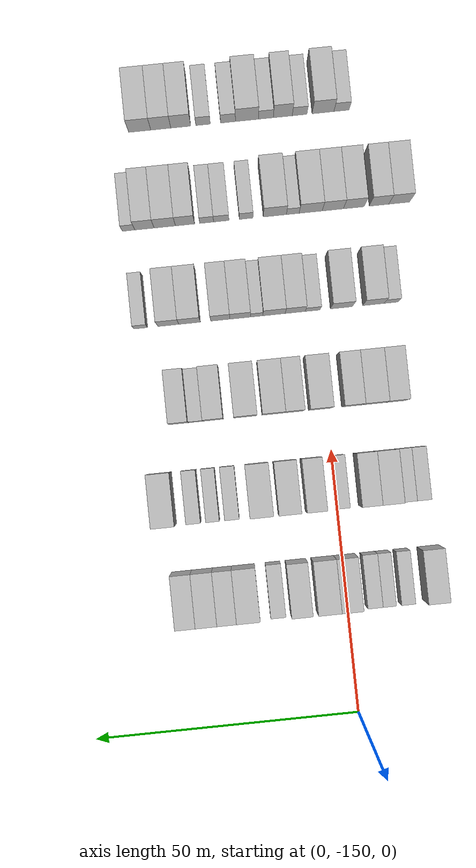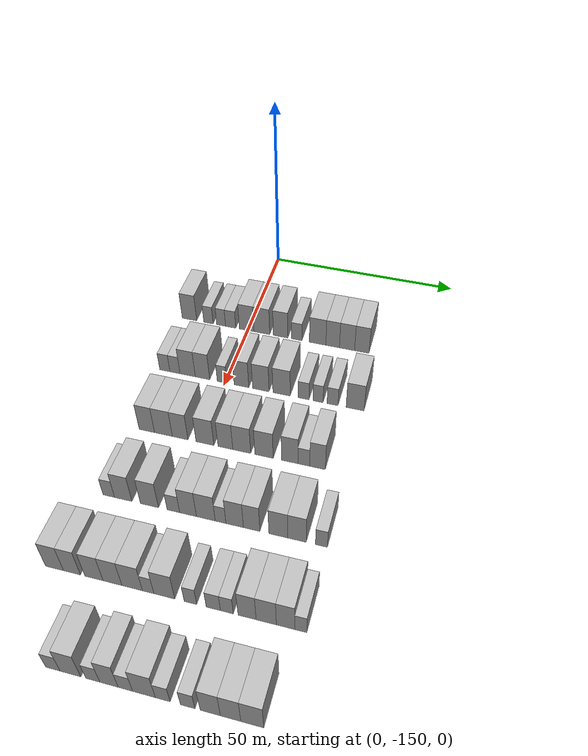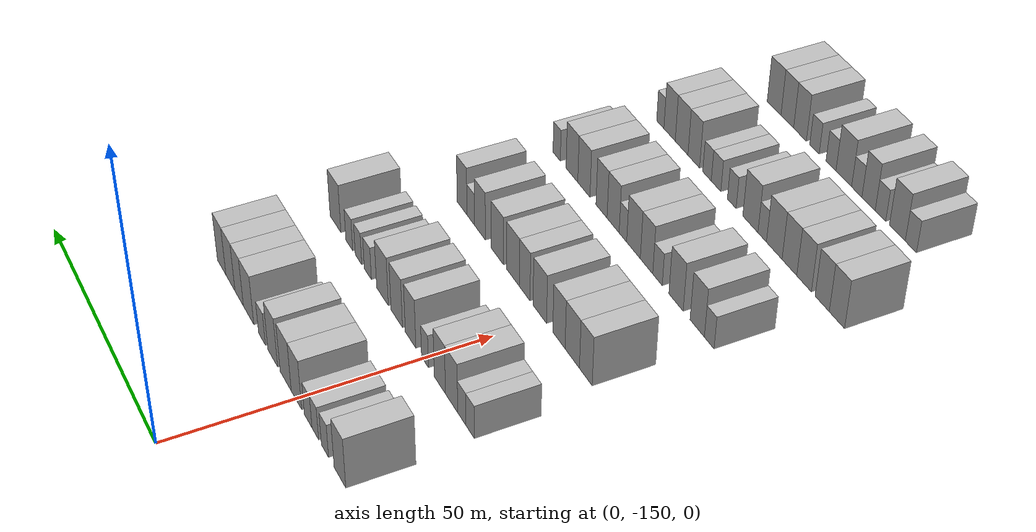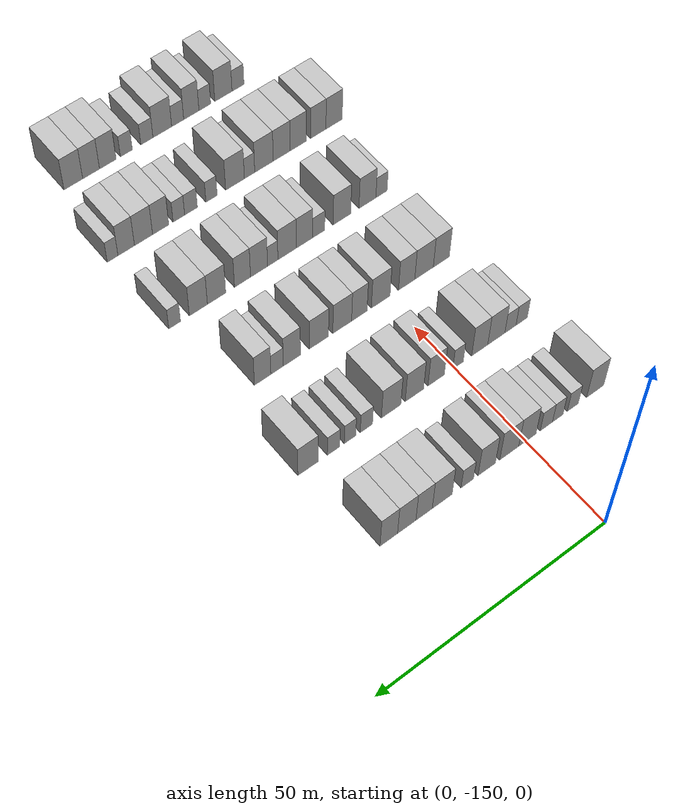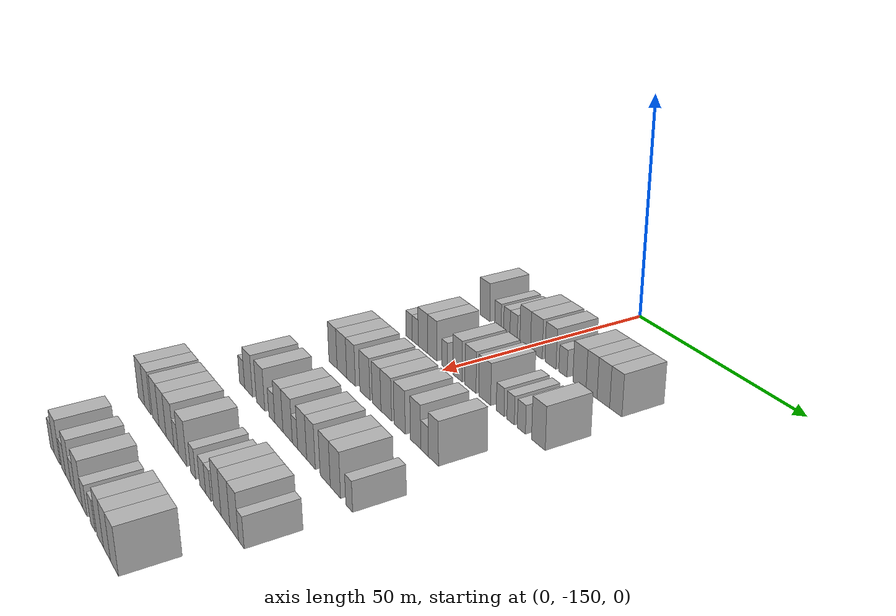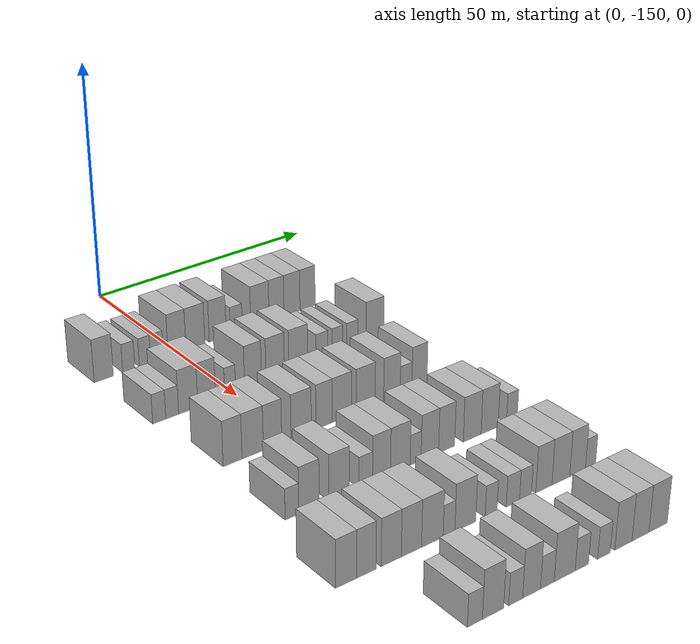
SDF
<sdf version="1.6">
 <world name="default">
  <model name="building_50">
   <static>1</static>
   <pose>25.0000 -166.3550 0 0.000000 0.000000 0.000000</pose>
   <link name="link">
    <pose>0 0 4.50 0 0 0</pose>
    <collision name="collision"><geometry><box><size>10.0000 4.1114 9.0000</size></box></geometry></collision>
    <visual name="visual">
     <cast_shadows>0</cast_shadows>
     <geometry><box><size>10.0000 4.1114 9.0000</size></box></geometry>
     <material>
      <script>
       <uri>model://HANNAS_wall/materials/scripts</uri>
       <uri>model://HANNAS_wall/materials/textures</uri>
       <name>vrc/HANNAS_wall</name>
      </script>
     </material>
    </visual>
   </link>
  </model>
  <model name="building_51">
   <static>1</static>
   <pose>25.0000 -160.9869 0 0.000000 0.000000 0.000000</pose>
   <link name="link">
    <pose>0 0 3.00 0 0 0</pose>
    <collision name="collision"><geometry><box><size>10.0000 2.6247 6.0000</size></box></geometry></collision>
    <visual name="visual">
     <cast_shadows>0</cast_shadows>
     <geometry><box><size>10.0000 2.6247 6.0000</size></box></geometry>
     <material>
      <script>
       <uri>model://HANNAS_wall/materials/scripts</uri>
       <uri>model://HANNAS_wall/materials/textures</uri>
       <name>vrc/HANNAS_wall</name>
      </script>
     </material>
    </visual>
   </link>
  </model>
  <model name="building_52">
   <static>1</static>
   <pose>25.0000 -157.4329 0 0.000000 0.000000 0.000000</pose>
   <link name="link">
    <pose>0 0 3.00 0 0 0</pose>
    <collision name="collision"><geometry><box><size>10.0000 2.4834 6.0000</size></box></geometry></collision>
    <visual name="visual">
     <cast_shadows>0</cast_shadows>
     <geometry><box><size>10.0000 2.4834 6.0000</size></box></geometry>
     <material>
      <script>
       <uri>model://HANNAS_wall/materials/scripts</uri>
       <uri>model://HANNAS_wall/materials/textures</uri>
       <name>vrc/HANNAS_wall</name>
      </script>
     </material>
    </visual>
   </link>
  </model>
  <model name="building_53">
   <static>1</static>
   <pose>25.0000 -154.7656 0 0.000000 0.000000 0.000000</pose>
   <link name="link">
    <pose>0 0 3.00 0 0 0</pose>
    <collision name="collision"><geometry><box><size>10.0000 2.8512 6.0000</size></box></geometry></collision>
    <visual name="visual">
     <cast_shadows>0</cast_shadows>
     <geometry><box><size>10.0000 2.8512 6.0000</size></box></geometry>
     <material>
      <script>
       <uri>model://HANNAS_wall/materials/scripts</uri>
       <uri>model://HANNAS_wall/materials/textures</uri>
       <name>vrc/HANNAS_wall</name>
      </script>
     </material>
    </visual>
   </link>
  </model>
  <model name="building_54">
   <static>1</static>
   <pose>25.0000 -150.3234 0 0.000000 0.000000 0.000000</pose>
   <link name="link">
    <pose>0 0 4.50 0 0 0</pose>
    <collision name="collision"><geometry><box><size>10.0000 4.0333 9.0000</size></box></geometry></collision>
    <visual name="visual">
     <cast_shadows>0</cast_shadows>
     <geometry><box><size>10.0000 4.0333 9.0000</size></box></geometry>
     <material>
      <script>
       <uri>model://HANNAS_wall/materials/scripts</uri>
       <uri>model://HANNAS_wall/materials/textures</uri>
       <name>vrc/HANNAS_wall</name>
      </script>
     </material>
    </visual>
   </link>
  </model>
  <model name="building_55">
   <static>1</static>
   <pose>25.0000 -146.1334 0 0.000000 0.000000 0.000000</pose>
   <link name="link">
    <pose>0 0 4.50 0 0 0</pose>
    <collision name="collision"><geometry><box><size>10.0000 4.3468 9.0000</size></box></geometry></collision>
    <visual name="visual">
     <cast_shadows>0</cast_shadows>
     <geometry><box><size>10.0000 4.3468 9.0000</size></box></geometry>
     <material>
      <script>
       <uri>model://HANNAS_wall/materials/scripts</uri>
       <uri>model://HANNAS_wall/materials/textures</uri>
       <name>vrc/HANNAS_wall</name>
      </script>
     </material>
    </visual>
   </link>
  </model>
  <model name="building_56">
   <static>1</static>
   <pose>25.0000 -140.9835 0 0.000000 0.000000 0.000000</pose>
   <link name="link">
    <pose>0 0 4.50 0 0 0</pose>
    <collision name="collision"><geometry><box><size>10.0000 3.9530 9.0000</size></box></geometry></collision>
    <visual name="visual">
     <cast_shadows>0</cast_shadows>
     <geometry><box><size>10.0000 3.9530 9.0000</size></box></geometry>
     <material>
      <script>
       <uri>model://HANNAS_wall/materials/scripts</uri>
       <uri>model://HANNAS_wall/materials/textures</uri>
       <name>vrc/HANNAS_wall</name>
      </script>
     </material>
    </visual>
   </link>
  </model>
  <model name="building_57">
   <static>1</static>
   <pose>25.0000 -136.5951 0 0.000000 0.000000 0.000000</pose>
   <link name="link">
    <pose>0 0 3.00 0 0 0</pose>
    <collision name="collision"><geometry><box><size>10.0000 2.8238 6.0000</size></box></geometry></collision>
    <visual name="visual">
     <cast_shadows>0</cast_shadows>
     <geometry><box><size>10.0000 2.8238 6.0000</size></box></geometry>
     <material>
      <script>
       <uri>model://HANNAS_wall/materials/scripts</uri>
       <uri>model://HANNAS_wall/materials/textures</uri>
       <name>vrc/HANNAS_wall</name>
      </script>
     </material>
    </visual>
   </link>
  </model>
  <model name="building_58">
   <static>1</static>
   <pose>25.0000 -130.9755 0 0.000000 0.000000 0.000000</pose>
   <link name="link">
    <pose>0 0 4.50 0 0 0</pose>
    <collision name="collision"><geometry><box><size>10.0000 4.4152 9.0000</size></box></geometry></collision>
    <visual name="visual">
     <cast_shadows>0</cast_shadows>
     <geometry><box><size>10.0000 4.4152 9.0000</size></box></geometry>
     <material>
      <script>
       <uri>model://HANNAS_wall/materials/scripts</uri>
       <uri>model://HANNAS_wall/materials/textures</uri>
       <name>vrc/HANNAS_wall</name>
      </script>
     </material>
    </visual>
   </link>
  </model>
  <model name="building_59">
   <static>1</static>
   <pose>25.0000 -126.9599 0 0.000000 0.000000 0.000000</pose>
   <link name="link">
    <pose>0 0 4.50 0 0 0</pose>
    <collision name="collision"><geometry><box><size>10.0000 3.6161 9.0000</size></box></geometry></collision>
    <visual name="visual">
     <cast_shadows>0</cast_shadows>
     <geometry><box><size>10.0000 3.6161 9.0000</size></box></geometry>
     <material>
      <script>
       <uri>model://HANNAS_wall/materials/scripts</uri>
       <uri>model://HANNAS_wall/materials/textures</uri>
       <name>vrc/HANNAS_wall</name>
      </script>
     </material>
    </visual>
   </link>
  </model>
  <model name="building_60">
   <static>1</static>
   <pose>25.0000 -123.1505 0 0.000000 0.000000 0.000000</pose>
   <link name="link">
    <pose>0 0 4.50 0 0 0</pose>
    <collision name="collision"><geometry><box><size>10.0000 4.0026 9.0000</size></box></geometry></collision>
    <visual name="visual">
     <cast_shadows>0</cast_shadows>
     <geometry><box><size>10.0000 4.0026 9.0000</size></box></geometry>
     <material>
      <script>
       <uri>model://HANNAS_wall/materials/scripts</uri>
       <uri>model://HANNAS_wall/materials/textures</uri>
       <name>vrc/HANNAS_wall</name>
      </script>
     </material>
    </visual>
   </link>
  </model>
  <model name="building_61">
   <static>1</static>
   <pose>25.0000 -119.2473 0 0.000000 0.000000 0.000000</pose>
   <link name="link">
    <pose>0 0 4.50 0 0 0</pose>
    <collision name="collision"><geometry><box><size>10.0000 3.8039 9.0000</size></box></geometry></collision>
    <visual name="visual">
     <cast_shadows>0</cast_shadows>
     <geometry><box><size>10.0000 3.8039 9.0000</size></box></geometry>
     <material>
      <script>
       <uri>model://HANNAS_wall/materials/scripts</uri>
       <uri>model://HANNAS_wall/materials/textures</uri>
       <name>vrc/HANNAS_wall</name>
      </script>
     </material>
    </visual>
   </link>
  </model>
  <model name="building_223">
   <static>1</static>
   <pose>44.0000 -166.0020 0 0.000000 0.000000 0.000000</pose>
   <link name="link">
    <pose>0 0 3.00 0 0 0</pose>
    <collision name="collision"><geometry><box><size>10.0000 2.7193 6.0000</size></box></geometry></collision>
    <visual name="visual">
     <cast_shadows>0</cast_shadows>
     <geometry><box><size>10.0000 2.7193 6.0000</size></box></geometry>
     <material>
      <script>
       <uri>model://HANNAS_wall/materials/scripts</uri>
       <uri>model://HANNAS_wall/materials/textures</uri>
       <name>vrc/HANNAS_wall</name>
      </script>
     </material>
    </visual>
   </link>
  </model>
  <model name="building_224">
   <static>1</static>
   <pose>44.0000 -163.3001 0 0.000000 0.000000 0.000000</pose>
   <link name="link">
    <pose>0 0 3.00 0 0 0</pose>
    <collision name="collision"><geometry><box><size>10.0000 2.6847 6.0000</size></box></geometry></collision>
    <visual name="visual">
     <cast_shadows>0</cast_shadows>
     <geometry><box><size>10.0000 2.6847 6.0000</size></box></geometry>
     <material>
      <script>
       <uri>model://HANNAS_wall/materials/scripts</uri>
       <uri>model://HANNAS_wall/materials/textures</uri>
       <name>vrc/HANNAS_wall</name>
      </script>
     </material>
    </visual>
   </link>
  </model>
  <model name="building_225">
   <static>1</static>
   <pose>44.0000 -159.9141 0 0.000000 0.000000 0.000000</pose>
   <link name="link">
    <pose>0 0 4.50 0 0 0</pose>
    <collision name="collision"><geometry><box><size>10.0000 4.0872 9.0000</size></box></geometry></collision>
    <visual name="visual">
     <cast_shadows>0</cast_shadows>
     <geometry><box><size>10.0000 4.0872 9.0000</size></box></geometry>
     <material>
      <script>
       <uri>model://HANNAS_wall/materials/scripts</uri>
       <uri>model://HANNAS_wall/materials/textures</uri>
       <name>vrc/HANNAS_wall</name>
      </script>
     </material>
    </visual>
   </link>
  </model>
  <model name="building_226">
   <static>1</static>
   <pose>44.0000 -155.9651 0 0.000000 0.000000 0.000000</pose>
   <link name="link">
    <pose>0 0 4.50 0 0 0</pose>
    <collision name="collision"><geometry><box><size>10.0000 3.8107 9.0000</size></box></geometry></collision>
    <visual name="visual">
     <cast_shadows>0</cast_shadows>
     <geometry><box><size>10.0000 3.8107 9.0000</size></box></geometry>
     <material>
      <script>
       <uri>model://HANNAS_wall/materials/scripts</uri>
       <uri>model://HANNAS_wall/materials/textures</uri>
       <name>vrc/HANNAS_wall</name>
      </script>
     </material>
    </visual>
   </link>
  </model>
  <model name="building_227">
   <static>1</static>
   <pose>44.0000 -150.8498 0 0.000000 0.000000 0.000000</pose>
   <link name="link">
    <pose>0 0 3.00 0 0 0</pose>
    <collision name="collision"><geometry><box><size>10.0000 2.4200 6.0000</size></box></geometry></collision>
    <visual name="visual">
     <cast_shadows>0</cast_shadows>
     <geometry><box><size>10.0000 2.4200 6.0000</size></box></geometry>
     <material>
      <script>
       <uri>model://HANNAS_wall/materials/scripts</uri>
       <uri>model://HANNAS_wall/materials/textures</uri>
       <name>vrc/HANNAS_wall</name>
      </script>
     </material>
    </visual>
   </link>
  </model>
  <model name="building_228">
   <static>1</static>
   <pose>44.0000 -145.7404 0 0.000000 0.000000 0.000000</pose>
   <link name="link">
    <pose>0 0 4.50 0 0 0</pose>
    <collision name="collision"><geometry><box><size>10.0000 3.7988 9.0000</size></box></geometry></collision>
    <visual name="visual">
     <cast_shadows>0</cast_shadows>
     <geometry><box><size>10.0000 3.7988 9.0000</size></box></geometry>
     <material>
      <script>
       <uri>model://HANNAS_wall/materials/scripts</uri>
       <uri>model://HANNAS_wall/materials/textures</uri>
       <name>vrc/HANNAS_wall</name>
      </script>
     </material>
    </visual>
   </link>
  </model>
  <model name="building_229">
   <static>1</static>
   <pose>44.0000 -140.7327 0 0.000000 0.000000 0.000000</pose>
   <link name="link">
    <pose>0 0 4.50 0 0 0</pose>
    <collision name="collision"><geometry><box><size>10.0000 4.2165 9.0000</size></box></geometry></collision>
    <visual name="visual">
     <cast_shadows>0</cast_shadows>
     <geometry><box><size>10.0000 4.2165 9.0000</size></box></geometry>
     <material>
      <script>
       <uri>model://HANNAS_wall/materials/scripts</uri>
       <uri>model://HANNAS_wall/materials/textures</uri>
       <name>vrc/HANNAS_wall</name>
      </script>
     </material>
    </visual>
   </link>
  </model>
  <model name="building_230">
   <static>1</static>
   <pose>44.0000 -135.4212 0 0.000000 0.000000 0.000000</pose>
   <link name="link">
    <pose>0 0 4.50 0 0 0</pose>
    <collision name="collision"><geometry><box><size>10.0000 4.4064 9.0000</size></box></geometry></collision>
    <visual name="visual">
     <cast_shadows>0</cast_shadows>
     <geometry><box><size>10.0000 4.4064 9.0000</size></box></geometry>
     <material>
      <script>
       <uri>model://HANNAS_wall/materials/scripts</uri>
       <uri>model://HANNAS_wall/materials/textures</uri>
       <name>vrc/HANNAS_wall</name>
      </script>
     </material>
    </visual>
   </link>
  </model>
  <model name="building_231">
   <static>1</static>
   <pose>44.0000 -129.8470 0 0.000000 0.000000 0.000000</pose>
   <link name="link">
    <pose>0 0 3.00 0 0 0</pose>
    <collision name="collision"><geometry><box><size>10.0000 2.7421 6.0000</size></box></geometry></collision>
    <visual name="visual">
     <cast_shadows>0</cast_shadows>
     <geometry><box><size>10.0000 2.7421 6.0000</size></box></geometry>
     <material>
      <script>
       <uri>model://HANNAS_wall/materials/scripts</uri>
       <uri>model://HANNAS_wall/materials/textures</uri>
       <name>vrc/HANNAS_wall</name>
      </script>
     </material>
    </visual>
   </link>
  </model>
  <model name="building_232">
   <static>1</static>
   <pose>44.0000 -126.2018 0 0.000000 0.000000 0.000000</pose>
   <link name="link">
    <pose>0 0 3.00 0 0 0</pose>
    <collision name="collision"><geometry><box><size>10.0000 2.5482 6.0000</size></box></geometry></collision>
    <visual name="visual">
     <cast_shadows>0</cast_shadows>
     <geometry><box><size>10.0000 2.5482 6.0000</size></box></geometry>
     <material>
      <script>
       <uri>model://HANNAS_wall/materials/scripts</uri>
       <uri>model://HANNAS_wall/materials/textures</uri>
       <name>vrc/HANNAS_wall</name>
      </script>
     </material>
    </visual>
   </link>
  </model>
  <model name="building_233">
   <static>1</static>
   <pose>44.0000 -122.5564 0 0.000000 0.000000 0.000000</pose>
   <link name="link">
    <pose>0 0 3.00 0 0 0</pose>
    <collision name="collision"><geometry><box><size>10.0000 2.7426 6.0000</size></box></geometry></collision>
    <visual name="visual">
     <cast_shadows>0</cast_shadows>
     <geometry><box><size>10.0000 2.7426 6.0000</size></box></geometry>
     <material>
      <script>
       <uri>model://HANNAS_wall/materials/scripts</uri>
       <uri>model://HANNAS_wall/materials/textures</uri>
       <name>vrc/HANNAS_wall</name>
      </script>
     </material>
    </visual>
   </link>
  </model>
  <model name="building_234">
   <static>1</static>
   <pose>44.0000 -116.9736 0 0.000000 0.000000 0.000000</pose>
   <link name="link">
    <pose>0 0 4.50 0 0 0</pose>
    <collision name="collision"><geometry><box><size>10.0000 4.4230 9.0000</size></box></geometry></collision>
    <visual name="visual">
     <cast_shadows>0</cast_shadows>
     <geometry><box><size>10.0000 4.4230 9.0000</size></box></geometry>
     <material>
      <script>
       <uri>model://HANNAS_wall/materials/scripts</uri>
       <uri>model://HANNAS_wall/materials/textures</uri>
       <name>vrc/HANNAS_wall</name>
      </script>
     </material>
    </visual>
   </link>
  </model>
  <model name="building_403">
   <static>1</static>
   <pose>63.0000 -163.1177 0 0.000000 0.000000 0.000000</pose>
   <link name="link">
    <pose>0 0 4.50 0 0 0</pose>
    <collision name="collision"><geometry><box><size>10.0000 3.8690 9.0000</size></box></geometry></collision>
    <visual name="visual">
     <cast_shadows>0</cast_shadows>
     <geometry><box><size>10.0000 3.8690 9.0000</size></box></geometry>
     <material>
      <script>
       <uri>model://HANNAS_wall/materials/scripts</uri>
       <uri>model://HANNAS_wall/materials/textures</uri>
       <name>vrc/HANNAS_wall</name>
      </script>
     </material>
    </visual>
   </link>
  </model>
  <model name="building_404">
   <static>1</static>
   <pose>63.0000 -158.9531 0 0.000000 0.000000 0.000000</pose>
   <link name="link">
    <pose>0 0 4.50 0 0 0</pose>
    <collision name="collision"><geometry><box><size>10.0000 4.4602 9.0000</size></box></geometry></collision>
    <visual name="visual">
     <cast_shadows>0</cast_shadows>
     <geometry><box><size>10.0000 4.4602 9.0000</size></box></geometry>
     <material>
      <script>
       <uri>model://HANNAS_wall/materials/scripts</uri>
       <uri>model://HANNAS_wall/materials/textures</uri>
       <name>vrc/HANNAS_wall</name>
      </script>
     </material>
    </visual>
   </link>
  </model>
  <model name="building_405">
   <static>1</static>
   <pose>63.0000 -154.7812 0 0.000000 0.000000 0.000000</pose>
   <link name="link">
    <pose>0 0 4.50 0 0 0</pose>
    <collision name="collision"><geometry><box><size>10.0000 3.8837 9.0000</size></box></geometry></collision>
    <visual name="visual">
     <cast_shadows>0</cast_shadows>
     <geometry><box><size>10.0000 3.8837 9.0000</size></box></geometry>
     <material>
      <script>
       <uri>model://HANNAS_wall/materials/scripts</uri>
       <uri>model://HANNAS_wall/materials/textures</uri>
       <name>vrc/HANNAS_wall</name>
      </script>
     </material>
    </visual>
   </link>
  </model>
  <model name="building_406">
   <static>1</static>
   <pose>63.0000 -148.6380 0 0.000000 0.000000 0.000000</pose>
   <link name="link">
    <pose>0 0 4.50 0 0 0</pose>
    <collision name="collision"><geometry><box><size>10.0000 4.4026 9.0000</size></box></geometry></collision>
    <visual name="visual">
     <cast_shadows>0</cast_shadows>
     <geometry><box><size>10.0000 4.4026 9.0000</size></box></geometry>
     <material>
      <script>
       <uri>model://HANNAS_wall/materials/scripts</uri>
       <uri>model://HANNAS_wall/materials/textures</uri>
       <name>vrc/HANNAS_wall</name>
      </script>
     </material>
    </visual>
   </link>
  </model>
  <model name="building_407">
   <static>1</static>
   <pose>63.0000 -143.6343 0 0.000000 0.000000 0.000000</pose>
   <link name="link">
    <pose>0 0 4.50 0 0 0</pose>
    <collision name="collision"><geometry><box><size>10.0000 3.6049 9.0000</size></box></geometry></collision>
    <visual name="visual">
     <cast_shadows>0</cast_shadows>
     <geometry><box><size>10.0000 3.6049 9.0000</size></box></geometry>
     <material>
      <script>
       <uri>model://HANNAS_wall/materials/scripts</uri>
       <uri>model://HANNAS_wall/materials/textures</uri>
       <name>vrc/HANNAS_wall</name>
      </script>
     </material>
    </visual>
   </link>
  </model>
  <model name="building_408">
   <static>1</static>
   <pose>63.0000 -139.6617 0 0.000000 0.000000 0.000000</pose>
   <link name="link">
    <pose>0 0 4.50 0 0 0</pose>
    <collision name="collision"><geometry><box><size>10.0000 4.3403 9.0000</size></box></geometry></collision>
    <visual name="visual">
     <cast_shadows>0</cast_shadows>
     <geometry><box><size>10.0000 4.3403 9.0000</size></box></geometry>
     <material>
      <script>
       <uri>model://HANNAS_wall/materials/scripts</uri>
       <uri>model://HANNAS_wall/materials/textures</uri>
       <name>vrc/HANNAS_wall</name>
      </script>
     </material>
    </visual>
   </link>
  </model>
  <model name="building_409">
   <static>1</static>
   <pose>63.0000 -134.2986 0 0.000000 0.000000 0.000000</pose>
   <link name="link">
    <pose>0 0 4.50 0 0 0</pose>
    <collision name="collision"><geometry><box><size>10.0000 4.3859 9.0000</size></box></geometry></collision>
    <visual name="visual">
     <cast_shadows>0</cast_shadows>
     <geometry><box><size>10.0000 4.3859 9.0000</size></box></geometry>
     <material>
      <script>
       <uri>model://HANNAS_wall/materials/scripts</uri>
       <uri>model://HANNAS_wall/materials/textures</uri>
       <name>vrc/HANNAS_wall</name>
      </script>
     </material>
    </visual>
   </link>
  </model>
  <model name="building_410">
   <static>1</static>
   <pose>63.0000 -128.1694 0 0.000000 0.000000 0.000000</pose>
   <link name="link">
    <pose>0 0 4.50 0 0 0</pose>
    <collision name="collision"><geometry><box><size>10.0000 3.8724 9.0000</size></box></geometry></collision>
    <visual name="visual">
     <cast_shadows>0</cast_shadows>
     <geometry><box><size>10.0000 3.8724 9.0000</size></box></geometry>
     <material>
      <script>
       <uri>model://HANNAS_wall/materials/scripts</uri>
       <uri>model://HANNAS_wall/materials/textures</uri>
       <name>vrc/HANNAS_wall</name>
      </script>
     </material>
    </visual>
   </link>
  </model>
  <model name="building_411">
   <static>1</static>
   <pose>63.0000 -124.8500 0 0.000000 0.000000 0.000000</pose>
   <link name="link">
    <pose>0 0 3.00 0 0 0</pose>
    <collision name="collision"><geometry><box><size>10.0000 2.7664 6.0000</size></box></geometry></collision>
    <visual name="visual">
     <cast_shadows>0</cast_shadows>
     <geometry><box><size>10.0000 2.7664 6.0000</size></box></geometry>
     <material>
      <script>
       <uri>model://HANNAS_wall/materials/scripts</uri>
       <uri>model://HANNAS_wall/materials/textures</uri>
       <name>vrc/HANNAS_wall</name>
      </script>
     </material>
    </visual>
   </link>
  </model>
  <model name="building_412">
   <static>1</static>
   <pose>63.0000 -121.6442 0 0.000000 0.000000 0.000000</pose>
   <link name="link">
    <pose>0 0 4.50 0 0 0</pose>
    <collision name="collision"><geometry><box><size>10.0000 3.6452 9.0000</size></box></geometry></collision>
    <visual name="visual">
     <cast_shadows>0</cast_shadows>
     <geometry><box><size>10.0000 3.6452 9.0000</size></box></geometry>
     <material>
      <script>
       <uri>model://HANNAS_wall/materials/scripts</uri>
       <uri>model://HANNAS_wall/materials/textures</uri>
       <name>vrc/HANNAS_wall</name>
      </script>
     </material>
    </visual>
   </link>
  </model>
  <model name="building_581">
   <static>1</static>
   <pose>82.0000 -164.3843 0 0.000000 0.000000 0.000000</pose>
   <link name="link">
    <pose>0 0 3.00 0 0 0</pose>
    <collision name="collision"><geometry><box><size>10.0000 2.7412 6.0000</size></box></geometry></collision>
    <visual name="visual">
     <cast_shadows>0</cast_shadows>
     <geometry><box><size>10.0000 2.7412 6.0000</size></box></geometry>
     <material>
      <script>
       <uri>model://HANNAS_wall/materials/scripts</uri>
       <uri>model://HANNAS_wall/materials/textures</uri>
       <name>vrc/HANNAS_wall</name>
      </script>
     </material>
    </visual>
   </link>
  </model>
  <model name="building_582">
   <static>1</static>
   <pose>82.0000 -160.9548 0 0.000000 0.000000 0.000000</pose>
   <link name="link">
    <pose>0 0 4.50 0 0 0</pose>
    <collision name="collision"><geometry><box><size>10.0000 4.1178 9.0000</size></box></geometry></collision>
    <visual name="visual">
     <cast_shadows>0</cast_shadows>
     <geometry><box><size>10.0000 4.1178 9.0000</size></box></geometry>
     <material>
      <script>
       <uri>model://HANNAS_wall/materials/scripts</uri>
       <uri>model://HANNAS_wall/materials/textures</uri>
       <name>vrc/HANNAS_wall</name>
      </script>
     </material>
    </visual>
   </link>
  </model>
  <model name="building_583">
   <static>1</static>
   <pose>82.0000 -154.7797 0 0.000000 0.000000 0.000000</pose>
   <link name="link">
    <pose>0 0 4.50 0 0 0</pose>
    <collision name="collision"><geometry><box><size>10.0000 4.2325 9.0000</size></box></geometry></collision>
    <visual name="visual">
     <cast_shadows>0</cast_shadows>
     <geometry><box><size>10.0000 4.2325 9.0000</size></box></geometry>
     <material>
      <script>
       <uri>model://HANNAS_wall/materials/scripts</uri>
       <uri>model://HANNAS_wall/materials/textures</uri>
       <name>vrc/HANNAS_wall</name>
      </script>
     </material>
    </visual>
   </link>
  </model>
  <model name="building_584">
   <static>1</static>
   <pose>82.0000 -149.2186 0 0.000000 0.000000 0.000000</pose>
   <link name="link">
    <pose>0 0 3.00 0 0 0</pose>
    <collision name="collision"><geometry><box><size>10.0000 2.8897 6.0000</size></box></geometry></collision>
    <visual name="visual">
     <cast_shadows>0</cast_shadows>
     <geometry><box><size>10.0000 2.8897 6.0000</size></box></geometry>
     <material>
      <script>
       <uri>model://HANNAS_wall/materials/scripts</uri>
       <uri>model://HANNAS_wall/materials/textures</uri>
       <name>vrc/HANNAS_wall</name>
      </script>
     </material>
    </visual>
   </link>
  </model>
  <model name="building_585">
   <static>1</static>
   <pose>82.0000 -145.8452 0 0.000000 0.000000 0.000000</pose>
   <link name="link">
    <pose>0 0 4.50 0 0 0</pose>
    <collision name="collision"><geometry><box><size>10.0000 3.8570 9.0000</size></box></geometry></collision>
    <visual name="visual">
     <cast_shadows>0</cast_shadows>
     <geometry><box><size>10.0000 3.8570 9.0000</size></box></geometry>
     <material>
      <script>
       <uri>model://HANNAS_wall/materials/scripts</uri>
       <uri>model://HANNAS_wall/materials/textures</uri>
       <name>vrc/HANNAS_wall</name>
      </script>
     </material>
    </visual>
   </link>
  </model>
  <model name="building_586">
   <static>1</static>
   <pose>82.0000 -141.7687 0 0.000000 0.000000 0.000000</pose>
   <link name="link">
    <pose>0 0 4.50 0 0 0</pose>
    <collision name="collision"><geometry><box><size>10.0000 4.2959 9.0000</size></box></geometry></collision>
    <visual name="visual">
     <cast_shadows>0</cast_shadows>
     <geometry><box><size>10.0000 4.2959 9.0000</size></box></geometry>
     <material>
      <script>
       <uri>model://HANNAS_wall/materials/scripts</uri>
       <uri>model://HANNAS_wall/materials/textures</uri>
       <name>vrc/HANNAS_wall</name>
      </script>
     </material>
    </visual>
   </link>
  </model>
  <model name="building_587">
   <static>1</static>
   <pose>82.0000 -138.4168 0 0.000000 0.000000 0.000000</pose>
   <link name="link">
    <pose>0 0 3.00 0 0 0</pose>
    <collision name="collision"><geometry><box><size>10.0000 2.4079 6.0000</size></box></geometry></collision>
    <visual name="visual">
     <cast_shadows>0</cast_shadows>
     <geometry><box><size>10.0000 2.4079 6.0000</size></box></geometry>
     <material>
      <script>
       <uri>model://HANNAS_wall/materials/scripts</uri>
       <uri>model://HANNAS_wall/materials/textures</uri>
       <name>vrc/HANNAS_wall</name>
      </script>
     </material>
    </visual>
   </link>
  </model>
  <model name="building_588">
   <static>1</static>
   <pose>82.0000 -135.2459 0 0.000000 0.000000 0.000000</pose>
   <link name="link">
    <pose>0 0 4.50 0 0 0</pose>
    <collision name="collision"><geometry><box><size>10.0000 3.9339 9.0000</size></box></geometry></collision>
    <visual name="visual">
     <cast_shadows>0</cast_shadows>
     <geometry><box><size>10.0000 3.9339 9.0000</size></box></geometry>
     <material>
      <script>
       <uri>model://HANNAS_wall/materials/scripts</uri>
       <uri>model://HANNAS_wall/materials/textures</uri>
       <name>vrc/HANNAS_wall</name>
      </script>
     </material>
    </visual>
   </link>
  </model>
  <model name="building_589">
   <static>1</static>
   <pose>82.0000 -131.4427 0 0.000000 0.000000 0.000000</pose>
   <link name="link">
    <pose>0 0 4.50 0 0 0</pose>
    <collision name="collision"><geometry><box><size>10.0000 3.6726 9.0000</size></box></geometry></collision>
    <visual name="visual">
     <cast_shadows>0</cast_shadows>
     <geometry><box><size>10.0000 3.6726 9.0000</size></box></geometry>
     <material>
      <script>
       <uri>model://HANNAS_wall/materials/scripts</uri>
       <uri>model://HANNAS_wall/materials/textures</uri>
       <name>vrc/HANNAS_wall</name>
      </script>
     </material>
    </visual>
   </link>
  </model>
  <model name="building_590">
   <static>1</static>
   <pose>82.0000 -125.5335 0 0.000000 0.000000 0.000000</pose>
   <link name="link">
    <pose>0 0 4.50 0 0 0</pose>
    <collision name="collision"><geometry><box><size>10.0000 4.1458 9.0000</size></box></geometry></collision>
    <visual name="visual">
     <cast_shadows>0</cast_shadows>
     <geometry><box><size>10.0000 4.1458 9.0000</size></box></geometry>
     <material>
      <script>
       <uri>model://HANNAS_wall/materials/scripts</uri>
       <uri>model://HANNAS_wall/materials/textures</uri>
       <name>vrc/HANNAS_wall</name>
      </script>
     </material>
    </visual>
   </link>
  </model>
  <model name="building_591">
   <static>1</static>
   <pose>82.0000 -121.4386 0 0.000000 0.000000 0.000000</pose>
   <link name="link">
    <pose>0 0 4.50 0 0 0</pose>
    <collision name="collision"><geometry><box><size>10.0000 4.0441 9.0000</size></box></geometry></collision>
    <visual name="visual">
     <cast_shadows>0</cast_shadows>
     <geometry><box><size>10.0000 4.0441 9.0000</size></box></geometry>
     <material>
      <script>
       <uri>model://HANNAS_wall/materials/scripts</uri>
       <uri>model://HANNAS_wall/materials/textures</uri>
       <name>vrc/HANNAS_wall</name>
      </script>
     </material>
    </visual>
   </link>
  </model>
  <model name="building_592">
   <static>1</static>
   <pose>82.0000 -116.1194 0 0.000000 0.000000 0.000000</pose>
   <link name="link">
    <pose>0 0 3.00 0 0 0</pose>
    <collision name="collision"><geometry><box><size>10.0000 2.5943 6.0000</size></box></geometry></collision>
    <visual name="visual">
     <cast_shadows>0</cast_shadows>
     <geometry><box><size>10.0000 2.5943 6.0000</size></box></geometry>
     <material>
      <script>
       <uri>model://HANNAS_wall/materials/scripts</uri>
       <uri>model://HANNAS_wall/materials/textures</uri>
       <name>vrc/HANNAS_wall</name>
      </script>
     </material>
    </visual>
   </link>
  </model>
  <model name="building_752">
   <static>1</static>
   <pose>101.0000 -167.9975 0 0.000000 0.000000 0.000000</pose>
   <link name="link">
    <pose>0 0 4.50 0 0 0</pose>
    <collision name="collision"><geometry><box><size>10.0000 4.0391 9.0000</size></box></geometry></collision>
    <visual name="visual">
     <cast_shadows>0</cast_shadows>
     <geometry><box><size>10.0000 4.0391 9.0000</size></box></geometry>
     <material>
      <script>
       <uri>model://HANNAS_wall/materials/scripts</uri>
       <uri>model://HANNAS_wall/materials/textures</uri>
       <name>vrc/HANNAS_wall</name>
      </script>
     </material>
    </visual>
   </link>
  </model>
  <model name="building_753">
   <static>1</static>
   <pose>101.0000 -164.0840 0 0.000000 0.000000 0.000000</pose>
   <link name="link">
    <pose>0 0 4.50 0 0 0</pose>
    <collision name="collision"><geometry><box><size>10.0000 3.7879 9.0000</size></box></geometry></collision>
    <visual name="visual">
     <cast_shadows>0</cast_shadows>
     <geometry><box><size>10.0000 3.7879 9.0000</size></box></geometry>
     <material>
      <script>
       <uri>model://HANNAS_wall/materials/scripts</uri>
       <uri>model://HANNAS_wall/materials/textures</uri>
       <name>vrc/HANNAS_wall</name>
      </script>
     </material>
    </visual>
   </link>
  </model>
  <model name="building_754">
   <static>1</static>
   <pose>101.0000 -159.1838 0 0.000000 0.000000 0.000000</pose>
   <link name="link">
    <pose>0 0 4.50 0 0 0</pose>
    <collision name="collision"><geometry><box><size>10.0000 4.0127 9.0000</size></box></geometry></collision>
    <visual name="visual">
     <cast_shadows>0</cast_shadows>
     <geometry><box><size>10.0000 4.0127 9.0000</size></box></geometry>
     <material>
      <script>
       <uri>model://HANNAS_wall/materials/scripts</uri>
       <uri>model://HANNAS_wall/materials/textures</uri>
       <name>vrc/HANNAS_wall</name>
      </script>
     </material>
    </visual>
   </link>
  </model>
  <model name="building_755">
   <static>1</static>
   <pose>101.0000 -155.1214 0 0.000000 0.000000 0.000000</pose>
   <link name="link">
    <pose>0 0 4.50 0 0 0</pose>
    <collision name="collision"><geometry><box><size>10.0000 4.1120 9.0000</size></box></geometry></collision>
    <visual name="visual">
     <cast_shadows>0</cast_shadows>
     <geometry><box><size>10.0000 4.1120 9.0000</size></box></geometry>
     <material>
      <script>
       <uri>model://HANNAS_wall/materials/scripts</uri>
       <uri>model://HANNAS_wall/materials/textures</uri>
       <name>vrc/HANNAS_wall</name>
      </script>
     </material>
    </visual>
   </link>
  </model>
  <model name="building_756">
   <static>1</static>
   <pose>101.0000 -150.8356 0 0.000000 0.000000 0.000000</pose>
   <link name="link">
    <pose>0 0 4.50 0 0 0</pose>
    <collision name="collision"><geometry><box><size>10.0000 4.4596 9.0000</size></box></geometry></collision>
    <visual name="visual">
     <cast_shadows>0</cast_shadows>
     <geometry><box><size>10.0000 4.4596 9.0000</size></box></geometry>
     <material>
      <script>
       <uri>model://HANNAS_wall/materials/scripts</uri>
       <uri>model://HANNAS_wall/materials/textures</uri>
       <name>vrc/HANNAS_wall</name>
      </script>
     </material>
    </visual>
   </link>
  </model>
  <model name="building_757">
   <static>1</static>
   <pose>101.0000 -147.3708 0 0.000000 0.000000 0.000000</pose>
   <link name="link">
    <pose>0 0 3.00 0 0 0</pose>
    <collision name="collision"><geometry><box><size>10.0000 2.4701 6.0000</size></box></geometry></collision>
    <visual name="visual">
     <cast_shadows>0</cast_shadows>
     <geometry><box><size>10.0000 2.4701 6.0000</size></box></geometry>
     <material>
      <script>
       <uri>model://HANNAS_wall/materials/scripts</uri>
       <uri>model://HANNAS_wall/materials/textures</uri>
       <name>vrc/HANNAS_wall</name>
      </script>
     </material>
    </visual>
   </link>
  </model>
  <model name="building_758">
   <static>1</static>
   <pose>101.0000 -143.9045 0 0.000000 0.000000 0.000000</pose>
   <link name="link">
    <pose>0 0 4.50 0 0 0</pose>
    <collision name="collision"><geometry><box><size>10.0000 4.4625 9.0000</size></box></geometry></collision>
    <visual name="visual">
     <cast_shadows>0</cast_shadows>
     <geometry><box><size>10.0000 4.4625 9.0000</size></box></geometry>
     <material>
      <script>
       <uri>model://HANNAS_wall/materials/scripts</uri>
       <uri>model://HANNAS_wall/materials/textures</uri>
       <name>vrc/HANNAS_wall</name>
      </script>
     </material>
    </visual>
   </link>
  </model>
  <model name="building_759">
   <static>1</static>
   <pose>101.0000 -138.3551 0 0.000000 0.000000 0.000000</pose>
   <link name="link">
    <pose>0 0 3.00 0 0 0</pose>
    <collision name="collision"><geometry><box><size>10.0000 2.6362 6.0000</size></box></geometry></collision>
    <visual name="visual">
     <cast_shadows>0</cast_shadows>
     <geometry><box><size>10.0000 2.6362 6.0000</size></box></geometry>
     <material>
      <script>
       <uri>model://HANNAS_wall/materials/scripts</uri>
       <uri>model://HANNAS_wall/materials/textures</uri>
       <name>vrc/HANNAS_wall</name>
      </script>
     </material>
    </visual>
   </link>
  </model>
  <model name="building_760">
   <static>1</static>
   <pose>101.0000 -133.5537 0 0.000000 0.000000 0.000000</pose>
   <link name="link">
    <pose>0 0 3.00 0 0 0</pose>
    <collision name="collision"><geometry><box><size>10.0000 2.9665 6.0000</size></box></geometry></collision>
    <visual name="visual">
     <cast_shadows>0</cast_shadows>
     <geometry><box><size>10.0000 2.9665 6.0000</size></box></geometry>
     <material>
      <script>
       <uri>model://HANNAS_wall/materials/scripts</uri>
       <uri>model://HANNAS_wall/materials/textures</uri>
       <name>vrc/HANNAS_wall</name>
      </script>
     </material>
    </visual>
   </link>
  </model>
  <model name="building_761">
   <static>1</static>
   <pose>101.0000 -130.7361 0 0.000000 0.000000 0.000000</pose>
   <link name="link">
    <pose>0 0 3.00 0 0 0</pose>
    <collision name="collision"><geometry><box><size>10.0000 2.6688 6.0000</size></box></geometry></collision>
    <visual name="visual">
     <cast_shadows>0</cast_shadows>
     <geometry><box><size>10.0000 2.6688 6.0000</size></box></geometry>
     <material>
      <script>
       <uri>model://HANNAS_wall/materials/scripts</uri>
       <uri>model://HANNAS_wall/materials/textures</uri>
       <name>vrc/HANNAS_wall</name>
      </script>
     </material>
    </visual>
   </link>
  </model>
  <model name="building_762">
   <static>1</static>
   <pose>101.0000 -126.5518 0 0.000000 0.000000 0.000000</pose>
   <link name="link">
    <pose>0 0 4.50 0 0 0</pose>
    <collision name="collision"><geometry><box><size>10.0000 3.6998 9.0000</size></box></geometry></collision>
    <visual name="visual">
     <cast_shadows>0</cast_shadows>
     <geometry><box><size>10.0000 3.6998 9.0000</size></box></geometry>
     <material>
      <script>
       <uri>model://HANNAS_wall/materials/scripts</uri>
       <uri>model://HANNAS_wall/materials/textures</uri>
       <name>vrc/HANNAS_wall</name>
      </script>
     </material>
    </visual>
   </link>
  </model>
  <model name="building_763">
   <static>1</static>
   <pose>101.0000 -122.6374 0 0.000000 0.000000 0.000000</pose>
   <link name="link">
    <pose>0 0 4.50 0 0 0</pose>
    <collision name="collision"><geometry><box><size>10.0000 4.1291 9.0000</size></box></geometry></collision>
    <visual name="visual">
     <cast_shadows>0</cast_shadows>
     <geometry><box><size>10.0000 4.1291 9.0000</size></box></geometry>
     <material>
      <script>
       <uri>model://HANNAS_wall/materials/scripts</uri>
       <uri>model://HANNAS_wall/materials/textures</uri>
       <name>vrc/HANNAS_wall</name>
      </script>
     </material>
    </visual>
   </link>
  </model>
  <model name="building_764">
   <static>1</static>
   <pose>101.0000 -118.7063 0 0.000000 0.000000 0.000000</pose>
   <link name="link">
    <pose>0 0 4.50 0 0 0</pose>
    <collision name="collision"><geometry><box><size>10.0000 3.7331 9.0000</size></box></geometry></collision>
    <visual name="visual">
     <cast_shadows>0</cast_shadows>
     <geometry><box><size>10.0000 3.7331 9.0000</size></box></geometry>
     <material>
      <script>
       <uri>model://HANNAS_wall/materials/scripts</uri>
       <uri>model://HANNAS_wall/materials/textures</uri>
       <name>vrc/HANNAS_wall</name>
      </script>
     </material>
    </visual>
   </link>
  </model>
  <model name="building_765">
   <static>1</static>
   <pose>101.0000 -115.6317 0 0.000000 0.000000 0.000000</pose>
   <link name="link">
    <pose>0 0 3.00 0 0 0</pose>
    <collision name="collision"><geometry><box><size>10.0000 2.4162 6.0000</size></box></geometry></collision>
    <visual name="visual">
     <cast_shadows>0</cast_shadows>
     <geometry><box><size>10.0000 2.4162 6.0000</size></box></geometry>
     <material>
      <script>
       <uri>model://HANNAS_wall/materials/scripts</uri>
       <uri>model://HANNAS_wall/materials/textures</uri>
       <name>vrc/HANNAS_wall</name>
      </script>
     </material>
    </visual>
   </link>
  </model>
  <model name="building_933">
   <static>1</static>
   <pose>120.0000 -158.8107 0 0.000000 0.000000 0.000000</pose>
   <link name="link">
    <pose>0 0 3.00 0 0 0</pose>
    <collision name="collision"><geometry><box><size>10.0000 2.9565 6.0000</size></box></geometry></collision>
    <visual name="visual">
     <cast_shadows>0</cast_shadows>
     <geometry><box><size>10.0000 2.9565 6.0000</size></box></geometry>
     <material>
      <script>
       <uri>model://HANNAS_wall/materials/scripts</uri>
       <uri>model://HANNAS_wall/materials/textures</uri>
       <name>vrc/HANNAS_wall</name>
      </script>
     </material>
    </visual>
   </link>
  </model>
  <model name="building_934">
   <static>1</static>
   <pose>120.0000 -155.2183 0 0.000000 0.000000 0.000000</pose>
   <link name="link">
    <pose>0 0 4.50 0 0 0</pose>
    <collision name="collision"><geometry><box><size>10.0000 4.2284 9.0000</size></box></geometry></collision>
    <visual name="visual">
     <cast_shadows>0</cast_shadows>
     <geometry><box><size>10.0000 4.2284 9.0000</size></box></geometry>
     <material>
      <script>
       <uri>model://HANNAS_wall/materials/scripts</uri>
       <uri>model://HANNAS_wall/materials/textures</uri>
       <name>vrc/HANNAS_wall</name>
      </script>
     </material>
    </visual>
   </link>
  </model>
  <model name="building_935">
   <static>1</static>
   <pose>120.0000 -150.6764 0 0.000000 0.000000 0.000000</pose>
   <link name="link">
    <pose>0 0 3.00 0 0 0</pose>
    <collision name="collision"><geometry><box><size>10.0000 2.8553 6.0000</size></box></geometry></collision>
    <visual name="visual">
     <cast_shadows>0</cast_shadows>
     <geometry><box><size>10.0000 2.8553 6.0000</size></box></geometry>
     <material>
      <script>
       <uri>model://HANNAS_wall/materials/scripts</uri>
       <uri>model://HANNAS_wall/materials/textures</uri>
       <name>vrc/HANNAS_wall</name>
      </script>
     </material>
    </visual>
   </link>
  </model>
  <model name="building_936">
   <static>1</static>
   <pose>120.0000 -147.4111 0 0.000000 0.000000 0.000000</pose>
   <link name="link">
    <pose>0 0 4.50 0 0 0</pose>
    <collision name="collision"><geometry><box><size>10.0000 3.6755 9.0000</size></box></geometry></collision>
    <visual name="visual">
     <cast_shadows>0</cast_shadows>
     <geometry><box><size>10.0000 3.6755 9.0000</size></box></geometry>
     <material>
      <script>
       <uri>model://HANNAS_wall/materials/scripts</uri>
       <uri>model://HANNAS_wall/materials/textures</uri>
       <name>vrc/HANNAS_wall</name>
      </script>
     </material>
    </visual>
   </link>
  </model>
  <model name="building_937">
   <static>1</static>
   <pose>120.0000 -144.1307 0 0.000000 0.000000 0.000000</pose>
   <link name="link">
    <pose>0 0 3.00 0 0 0</pose>
    <collision name="collision"><geometry><box><size>10.0000 2.8853 6.0000</size></box></geometry></collision>
    <visual name="visual">
     <cast_shadows>0</cast_shadows>
     <geometry><box><size>10.0000 2.8853 6.0000</size></box></geometry>
     <material>
      <script>
       <uri>model://HANNAS_wall/materials/scripts</uri>
       <uri>model://HANNAS_wall/materials/textures</uri>
       <name>vrc/HANNAS_wall</name>
      </script>
     </material>
    </visual>
   </link>
  </model>
  <model name="building_938">
   <static>1</static>
   <pose>120.0000 -140.4554 0 0.000000 0.000000 0.000000</pose>
   <link name="link">
    <pose>0 0 4.50 0 0 0</pose>
    <collision name="collision"><geometry><box><size>10.0000 4.4652 9.0000</size></box></geometry></collision>
    <visual name="visual">
     <cast_shadows>0</cast_shadows>
     <geometry><box><size>10.0000 4.4652 9.0000</size></box></geometry>
     <material>
      <script>
       <uri>model://HANNAS_wall/materials/scripts</uri>
       <uri>model://HANNAS_wall/materials/textures</uri>
       <name>vrc/HANNAS_wall</name>
      </script>
     </material>
    </visual>
   </link>
  </model>
  <model name="building_939">
   <static>1</static>
   <pose>120.0000 -136.7843 0 0.000000 0.000000 0.000000</pose>
   <link name="link">
    <pose>0 0 3.00 0 0 0</pose>
    <collision name="collision"><geometry><box><size>10.0000 2.8769 6.0000</size></box></geometry></collision>
    <visual name="visual">
     <cast_shadows>0</cast_shadows>
     <geometry><box><size>10.0000 2.8769 6.0000</size></box></geometry>
     <material>
      <script>
       <uri>model://HANNAS_wall/materials/scripts</uri>
       <uri>model://HANNAS_wall/materials/textures</uri>
       <name>vrc/HANNAS_wall</name>
      </script>
     </material>
    </visual>
   </link>
  </model>
  <model name="building_940">
   <static>1</static>
   <pose>120.0000 -131.9476 0 0.000000 0.000000 0.000000</pose>
   <link name="link">
    <pose>0 0 3.00 0 0 0</pose>
    <collision name="collision"><geometry><box><size>10.0000 2.7966 6.0000</size></box></geometry></collision>
    <visual name="visual">
     <cast_shadows>0</cast_shadows>
     <geometry><box><size>10.0000 2.7966 6.0000</size></box></geometry>
     <material>
      <script>
       <uri>model://HANNAS_wall/materials/scripts</uri>
       <uri>model://HANNAS_wall/materials/textures</uri>
       <name>vrc/HANNAS_wall</name>
      </script>
     </material>
    </visual>
   </link>
  </model>
  <model name="building_941">
   <static>1</static>
   <pose>120.0000 -127.6192 0 0.000000 0.000000 0.000000</pose>
   <link name="link">
    <pose>0 0 4.50 0 0 0</pose>
    <collision name="collision"><geometry><box><size>10.0000 3.8603 9.0000</size></box></geometry></collision>
    <visual name="visual">
     <cast_shadows>0</cast_shadows>
     <geometry><box><size>10.0000 3.8603 9.0000</size></box></geometry>
     <material>
      <script>
       <uri>model://HANNAS_wall/materials/scripts</uri>
       <uri>model://HANNAS_wall/materials/textures</uri>
       <name>vrc/HANNAS_wall</name>
      </script>
     </material>
    </visual>
   </link>
  </model>
  <model name="building_942">
   <static>1</static>
   <pose>120.0000 -123.7503 0 0.000000 0.000000 0.000000</pose>
   <link name="link">
    <pose>0 0 4.50 0 0 0</pose>
    <collision name="collision"><geometry><box><size>10.0000 3.8774 9.0000</size></box></geometry></collision>
    <visual name="visual">
     <cast_shadows>0</cast_shadows>
     <geometry><box><size>10.0000 3.8774 9.0000</size></box></geometry>
     <material>
      <script>
       <uri>model://HANNAS_wall/materials/scripts</uri>
       <uri>model://HANNAS_wall/materials/textures</uri>
       <name>vrc/HANNAS_wall</name>
      </script>
     </material>
    </visual>
   </link>
  </model>
  <model name="building_943">
   <static>1</static>
   <pose>120.0000 -119.6635 0 0.000000 0.000000 0.000000</pose>
   <link name="link">
    <pose>0 0 4.50 0 0 0</pose>
    <collision name="collision"><geometry><box><size>10.0000 4.2961 9.0000</size></box></geometry></collision>
    <visual name="visual">
     <cast_shadows>0</cast_shadows>
     <geometry><box><size>10.0000 4.2961 9.0000</size></box></geometry>
     <material>
      <script>
       <uri>model://HANNAS_wall/materials/scripts</uri>
       <uri>model://HANNAS_wall/materials/textures</uri>
       <name>vrc/HANNAS_wall</name>
      </script>
     </material>
    </visual>
   </link>
  </model>
 </world>
</sdf>
